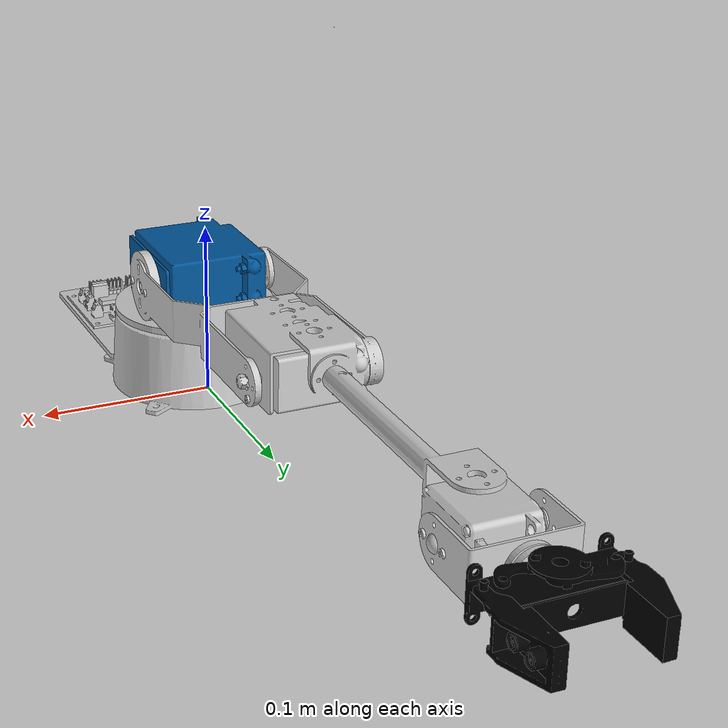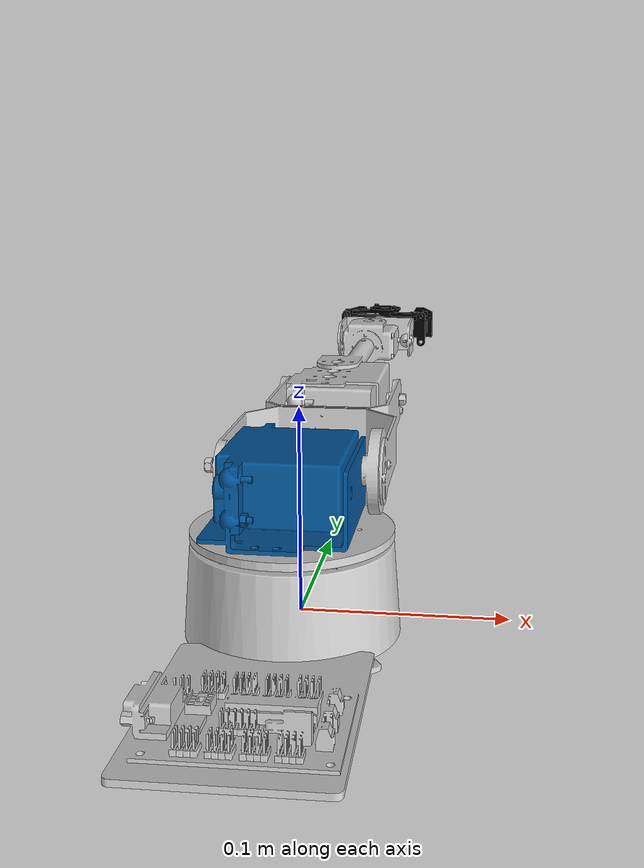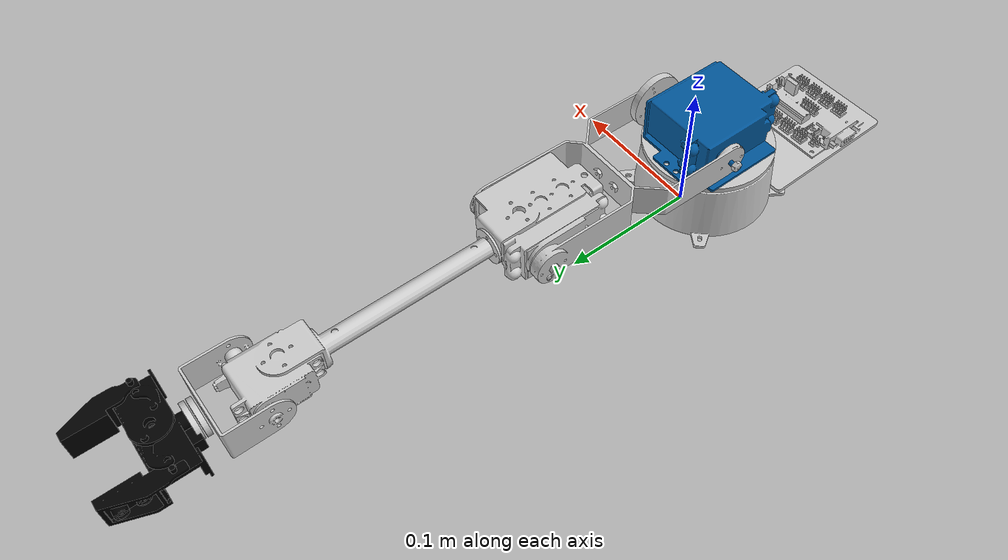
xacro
<?xml version="1.0" ?>
<robot name="lynxmotion_al5d" xmlns:xacro="http://www.ros.org/wiki/xacro">

    <xacro:include filename="$(find lynxmotion_al5d_description)/urdf/lynxmotion_al5d_properties.urdf.xacro" />

    <link name="world" />

    <link name="robot_support">
        <visual>
            <geometry>
                <mesh filename="package://lynxmotion_al5d_description/meshes/visual/support.dae"/>
            </geometry>
            <origin rpy="0 0 0" xyz="0 0 0"/>
            <material name="Silver"/>
        </visual>
        <collision>
            <geometry>
                <mesh filename="package://lynxmotion_al5d_description/meshes/collision/support.stl"/>
            </geometry>
            <origin rpy="0 0 0" xyz="0 0 0" />
        </collision>
        <xacro:inertial_matrix mass="${base_mass + board_mass}" ixx="3.6565e-7" ixy="-3.72e-9" ixz="1e-6" iyy="9.404e-8" iyz="4.375e-8" izz="4.1776e-7" xyz="0.000585 0.0602746 0.0170628" />
    </link>

    <link name="robot_base_cylinder">
        <visual>
            <geometry>
                <mesh filename="package://lynxmotion_al5d_description/meshes/visual/rotation_cylinder.dae" />
            </geometry>
            <origin rpy="0 0 0" xyz="0 -0.021 0" />
            <material name="Silver"/>
        </visual>
        <collision>
            <geometry>
                <mesh filename="package://lynxmotion_al5d_description/meshes/collision/rotation_cylinder.stl" />
            </geometry>
            <origin rpy="0 0 0" xyz="0 -0.021 0" />
        </collision>
        <xacro:inertial_matrix_bis mass="0.01" />
    </link>

    <link name="robot_base_top_box">
        <visual>
            <geometry>
                <mesh filename="package://lynxmotion_al5d_description/meshes/visual/top_box.dae" />
            </geometry>
            <origin xyz="-0.01 0.03 0" rpy="0 0 ${PI}" />
            <material name="BlueGrey"/>
        </visual>
        <collision>
            <geometry>
                <mesh filename="package://lynxmotion_al5d_description/meshes/collision/top_box.stl" />
            </geometry>
            <origin xyz="-0.01 0.03 0" rpy="0 0 ${PI}" />
        </collision>
        <xacro:inertial_matrix_bis mass="${top_box_mass}" />
    </link>

    <link name="shoulder">
        <visual>
            <geometry>
                <mesh filename="package://lynxmotion_al5d_description/meshes/visual/shoulder.dae" />
            </geometry>
            <material name="Silver"/>
            <origin rpy="${-5*PI/8} 0 0" xyz="0.005 -0.0625 0.036" />
        </visual>
        <collision>
            <geometry>
                <mesh filename="package://lynxmotion_al5d_description/meshes/collision/shoulder.stl" />
            </geometry>
            <origin rpy="${-5*PI/8} 0 0" xyz="0.005 -0.0625 0.036" />
        </collision>
        <xacro:inertial_matrix_bis mass="${shoulder_mass}" />
    </link>

    <link name="elbow">
        <visual>
            <geometry>
                <mesh filename="package://lynxmotion_al5d_description/meshes/visual/elbow.dae" />
            </geometry>
            <origin rpy="${-PI-0.895} ${PI} 0" xyz="-0.006 ${tube_length - 2*hs_755eb_depth/5} ${-shoulder_to_elbow - 0.018}" />
            <material name="Silver"/>
        </visual>
        <collision>
            <geometry>
                <mesh filename="package://lynxmotion_al5d_description/meshes/collision/elbow.stl" />
            </geometry>
            <origin rpy="${-PI-0.895} ${PI} 0" xyz="-0.005 ${tube_length - 2*hs_755eb_depth/5 + 0.005} ${-shoulder_to_elbow - 0.02}" />
        </collision>
        <xacro:inertial_matrix_bis mass="${hs_755eb_mass + hs_645_mass}" />
    </link>

    <link name="wrist">
        <visual>
            <geometry>
                <mesh filename="package://lynxmotion_al5d_description/meshes/visual/wrist.dae" />
            </geometry>
            <origin rpy="${PI} 0 0" xyz="0.005 -0.165 0.0695" />
            <material name="Silver"/>
        </visual>
        <collision>
            <geometry>
                <mesh filename="package://lynxmotion_al5d_description/meshes/collision/wrist.stl" />
            </geometry>
            <origin rpy="${PI} 0 0" xyz="0 -0.165 0.067" />
        </collision>
        <xacro:inertial_matrix_bis mass="0.031" />
    </link>

    <link name="gripper">
        <visual>
            <geometry>
                <mesh filename="package://lynxmotion_al5d_description/meshes/visual/gripper.dae" />
            </geometry>
            <origin rpy="${PI/2} 0 ${-PI/2}" xyz="0 -0.02 0.0" />
            <material name="Black"/>
        </visual>
        <collision>
            <geometry>
                <mesh filename="package://lynxmotion_al5d_description/meshes/collision/gripper.stl" />
            </geometry>
            <origin rpy="${PI/2} 0 ${-PI/2}" xyz="0 -0.02 0" />
        </collision>
        <xacro:inertial_matrix_bis mass="0.042" />
    </link>

    <link name="left_finger">
        <visual>
            <geometry>
                <mesh filename="package://lynxmotion_al5d_description/meshes/visual/finger_left.dae" />
            </geometry>
            <origin rpy="${PI/2} 0 ${-PI/2}" xyz="0.001 -0.005 0" />
            <material name="Black"/>
        </visual>
        <collision>
            <geometry>
                <mesh filename="package://lynxmotion_al5d_description/meshes/collision/finger_left.stl" />
            </geometry>
            <origin rpy="${PI/2} 0 ${-PI/2}" xyz="0.001 -0.005 0" />
        </collision>
        <xacro:inertial_matrix_bis mass="0.002" />
    </link>

    <link name="right_finger">
        <visual>
            <geometry>
                <mesh filename="package://lynxmotion_al5d_description/meshes/visual/finger_right.dae" />
            </geometry>
            <origin rpy="${PI/2} 0 ${-PI/2}" xyz="-0.003 -0.005 0" />
            <material name="Black"/>
        </visual>
        <collision>
            <geometry>
                <mesh filename="package://lynxmotion_al5d_description/meshes/collision/finger_right.stl" />
            </geometry>
            <origin rpy="${PI/2} 0 ${-PI/2}" xyz="-0.003 -0.005 0" />
        </collision>
        <xacro:inertial_matrix_bis mass="0.002" />
    </link>

    <link name="gripper_mov">
        <visual>
            <origin xyz="0 0 0" rpy="0 0 0" />
            <geometry>
                <box size="0.01 0.01 0.01" />
            </geometry>
            <material name="transparent"/>
        </visual>
        <collision>
            <origin xyz="0 0 0" rpy="0 0 0" />
            <geometry>
                <box size="0.01 0.01 0.01" />
            </geometry>
        </collision>
        <xacro:inertial_matrix_box mass="0.01" width="0.01" height="0.01" depth="0.01" />
    </link>

    <link name="camera_link">
        <visual>
            <geometry>
                <box size="0.0001 0.0001 0.0001" />
            </geometry>
            <origin rpy="0 0 0" xyz="0 0 0" />
            <material name="transparent"/>
        </visual>
        <collision>
            <geometry>
                <box size="0.0001 0.0001 0.0001" />
            </geometry>
            <origin rpy="0 0 0" xyz="0 0 0" />
        </collision>
        <xacro:inertial_matrix_bis mass="0.0005" />
    </link>

    <joint name="world_to_robot" type="fixed">
        <parent link="world" />
        <child link="robot_support" />
        <origin rpy="0 0 ${PI}" />
    </joint>

    <joint name="camera_joint" type="fixed">
        <parent link="world" />
        <child link="camera_link" />
        <origin xyz="0 0.17 ${camera_support_depth}" />
    </joint>

    <joint name="Joint1" type="revolute">
        <parent link="robot_support" />
        <child link="robot_base_cylinder" />
        <axis xyz="0 0 -1" />
        <origin xyz="0 0.02 0" rpy="0 0 ${PI}" />
        <limit effort="100" velocity="3" lower="${-PI}" upper="${PI}" />
        <dynamics damping="50.0" friction="1" />
    </joint>

    <joint name="base_to_cylinder" type="fixed">
        <parent link="robot_base_cylinder" />
        <child link="robot_base_top_box" />
    </joint>

    <joint name="Joint2" type="revolute">
        <parent link="robot_base_top_box" />
        <child link="shoulder" />
        <axis xyz="1 0 0"/>
        <origin xyz="0 0.02 0.07" />
        <limit effort="100" velocity="3" lower="0" upper="${PI}" />
        <dynamics damping="1.0" friction="0.8" />
    </joint>

    <joint name="Joint3" type="revolute">
        <parent link="shoulder" />
        <child link="elbow" />
        <axis xyz="1 0 0" />
        <origin xyz="0 ${shoulder_to_elbow} 0" />
        <limit effort="100" velocity="3" lower="${-PI}" upper="0" />
        <dynamics damping="1.0" friction="0.8" />
    </joint>

    <joint name="Joint4" type="revolute">
        <parent link="elbow" />
        <child link="wrist" />
        <axis xyz="1 0 0" />
        <origin xyz="0 0.181 0.005" rpy="0 0 0"/>
        <limit effort="40" velocity="3" lower="${-PI/2}" upper="${PI/2}" />
        <dynamics damping="5.0" friction="0.08" />
    </joint>

    <joint name="Joint5" type="revolute">
        <parent link="wrist" />
        <child link="gripper" />
        <axis xyz="0 -1 0" />
        <origin xyz="0 0.04 0" rpy="0 0 ${PI}" />
        <limit effort="100" velocity="3" lower="${-PI}" upper="${PI}" />
        <dynamics damping="1.0" friction="0.8" />
    </joint>

    <joint name="right_finger_joint" type="prismatic">
        <parent link="gripper" />
        <child link="right_finger" />
        <origin xyz="-0.005 -0.015 0" />
        <limit effort="100" velocity="0.1" lower="0" upper="${gripper_base_width/2}" />
        <mimic joint="Gripper" multiplier="-0.5" offset="${gripper_base_width/2}" />
        <dynamics damping="1.0" friction="0.16" />
    </joint>

    <joint name="left_finger_joint" type="prismatic">
        <parent link="gripper" />
        <child link="left_finger" />
        <origin xyz="0.005 -0.015 0" />
        <axis xyz="-1 0 0" />
        <limit effort="100" velocity="0.1" lower="0" upper="${gripper_base_width/2}" />
        <mimic joint="right_finger_joint" offset="-0.0025" />
        <dynamics damping="1.0" friction="0.16" />
    </joint>

    <joint name="Gripper" type="prismatic">
        <parent link="gripper" />
        <child link="gripper_mov" />
        <origin xyz="0.01 0 0" />
        <limit lower="0" upper="${gripper_base_width}" effort="10" velocity="0.1" />
        <axis xyz="-1 0 0" />
        <dynamics damping="5.0" />
    </joint>

    <gazebo reference="robot_support"><material>Gazebo/Grey</material></gazebo>
    <gazebo reference="robot_base_cylinder"><material>Gazebo/Grey</material></gazebo>
    <gazebo reference="robot_base_top_box"><material>Gazebo/Blue</material></gazebo>
    <gazebo reference="shoulder"><material>Gazebo/Grey</material></gazebo>
    <gazebo reference="elbow"><material>Gazebo/Grey</material></gazebo>
    <gazebo reference="wrist"><material>Gazebo/Grey</material></gazebo>
    <gazebo reference="gripper"><material>Gazebo/Black</material></gazebo>
    <gazebo reference="left_finger"><material>Gazebo/Black</material></gazebo>
    <gazebo reference="right_finger"><material>Gazebo/Black</material></gazebo>

    <ros2_control name="GazeboSystem" type="system">
        <hardware>
            <plugin>gazebo_ros2_control/GazeboSystem</plugin>
        </hardware>
        <joint name="Joint1">
            <command_interface name="position">
                <param name="min">-3.14159</param>
                <param name="max">3.14159</param>
            </command_interface>
            <state_interface name="position"/>
            <state_interface name="velocity"/>
        </joint>
        <joint name="Joint2">
            <command_interface name="position">
                <param name="min">0</param>
                <param name="max">3.14159</param>
            </command_interface>
            <state_interface name="position"/>
            <state_interface name="velocity"/>
        </joint>
        <joint name="Joint3">
            <command_interface name="position">
                <param name="min">-3.14159</param>
                <param name="max">0</param>
            </command_interface>
            <state_interface name="position"/>
            <state_interface name="velocity"/>
        </joint>
        <joint name="Joint4">
            <command_interface name="position">
                <param name="min">-1.5708</param>
                <param name="max">1.5708</param>
            </command_interface>
            <state_interface name="position"/>
            <state_interface name="velocity"/>
        </joint>
        <joint name="Joint5">
            <command_interface name="position">
                <param name="min">-3.14159</param>
                <param name="max">3.14159</param>
            </command_interface>
            <state_interface name="position"/>
            <state_interface name="velocity"/>
        </joint>
        <joint name="Gripper">
            <command_interface name="position">
                <param name="min">0</param>
                <param name="max">0.03175</param>
            </command_interface>
            <state_interface name="position"/>
            <state_interface name="velocity"/>
        </joint>
    </ros2_control>

    <gazebo>
        <plugin name="gazebo_ros2_control" filename="libgazebo_ros2_control.so">
            <parameters>$(find lynxmotion_al5d_description)/config/ros2_controllers.yaml</parameters>
        </plugin>
    </gazebo>

    <xacro:mimic_joint_plugin_gazebo name_prefix="finger_right"
        parent_joint="Gripper" mimic_joint="right_finger_joint" multiplier="-0.5"
        has_pid="true" max_effort="10.0" offset="${gripper_base_width/2}" />

    <xacro:mimic_joint_plugin_gazebo name_prefix="finger_left"
        parent_joint="Gripper" mimic_joint="left_finger_joint" multiplier="-0.5"
        has_pid="true" max_effort="10.0" offset="${gripper_base_width/2}" />

    <gazebo reference="camera_link">
        <sensor name="external_camera" type="camera">
            <update_rate>1.0</update_rate>
            <camera name="camera_top">
                <horizontal_fov>1.2</horizontal_fov>
                <pose>0 0 0 3.1415 1.5708 -1.5708</pose>
                <image>
                    <width>640</width>
                    <height>480</height>
                    <format>R8G8B8</format>
                </image>
                <clip>
                    <near>0.01</near>
                    <far>0.3</far>
                </clip>
            </camera>
            <plugin filename="libgazebo_ros_camera.so" name="camera_controller">
                <ros>
                    <namespace>/lynxmotion_al5d/external_vision</namespace>
                </ros>
                <camera_name>external_vision</camera_name>
                <frame_name>camera_link</frame_name>
            </plugin>
        </sensor>
    </gazebo>

</robot>

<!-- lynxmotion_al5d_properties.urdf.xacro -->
<robot xmlns:xacro="http://www.ros.org/wiki/xacro">

    <material name="transparent">
        <color rgba="0.0 0.0 0.0 0.0"/>
    </material>
    <material name="Black">
        <color rgba="0.0 0.0 0.0 1.0"/>
    </material>
    <material name="Silver">
        <color rgba="0.8 0.8 0.8 1.0"/>
    </material>
    <material name="BlueGrey">
        <color rgba="0.004 0.341 0.608 1.0"/>
    </material>

    <xacro:property name="PI" value="${pi}" />

    <xacro:property name="board_mass"         value="0.3" />
    <xacro:property name="base_mass"           value="2" />
    <xacro:property name="top_box_mass"        value="1" />
    <xacro:property name="shoulder_to_elbow"   value="0.146" />
    <xacro:property name="shoulder_mass"       value="0.5" />
    <xacro:property name="tube_length"         value="0.15" />
    <xacro:property name="hs_755eb_depth"      value="0.05" />
    <xacro:property name="hs_755eb_mass"       value="0.11" />
    <xacro:property name="hs_645_mass"         value="0.05" />
    <xacro:property name="gripper_base_width"  value="0.03175" />
    <xacro:property name="camera_support_depth" value="0.25" />

    <xacro:macro name="inertial_matrix" params="mass ixx ixy ixz iyy iyz izz xyz">
        <inertial>
            <origin rpy="0 0 0" xyz="${xyz}" />
            <mass value="${mass}" />
            <inertia ixx="${ixx}" ixy="${ixy}" ixz="${ixz}" iyy="${iyy}" iyz="${iyz}" izz="${izz}" />
        </inertial>
    </xacro:macro>

    <xacro:macro name="inertial_matrix_box" params="mass height width depth">
        <inertial>
            <mass value="${mass}" />
            <inertia ixx="${(depth*depth + height*height)*mass/12}" ixy="0.0" ixz="0.0"
                     iyy="${(width*width + depth*depth)*mass/12}" iyz="0.0"
                     izz="${(width*width + height*height)*mass/12}" />
        </inertial>
    </xacro:macro>

    <xacro:macro name="inertial_matrix_bis" params="mass">
        <inertial>
            <mass value="${mass}" />
            <inertia ixx="1.0" ixy="0.0" ixz="0.0" iyy="0.5" iyz="0.0" izz="1.0" />
        </inertial>
    </xacro:macro>

    <xacro:macro name="mimic_joint_plugin_gazebo" params="name_prefix parent_joint mimic_joint has_pid:=false multiplier:=1.0 offset:=0 sensitiveness:=0.0 max_effort:=1.0 robot_namespace:=''">
        <gazebo>
            <plugin name="${name_prefix}mimic_joint_plugin" filename="libroboticsgroup_upatras_gazebo_mimic_joint_plugin.so">
                <joint>${parent_joint}</joint>
                <mimicJoint>${mimic_joint}</mimicJoint>
                <xacro:if value="${has_pid}">
                    <hasPID />
                </xacro:if>
                <multiplier>${multiplier}</multiplier>
                <offset>${offset}</offset>
                <sensitiveness>${sensitiveness}</sensitiveness>
                <maxEffort>${max_effort}</maxEffort>
                <xacro:unless value="${robot_namespace == ''}">
                    <robotNamespace>${robot_namespace}</robotNamespace>
                </xacro:unless>
            </plugin>
        </gazebo>
    </xacro:macro>

</robot>
